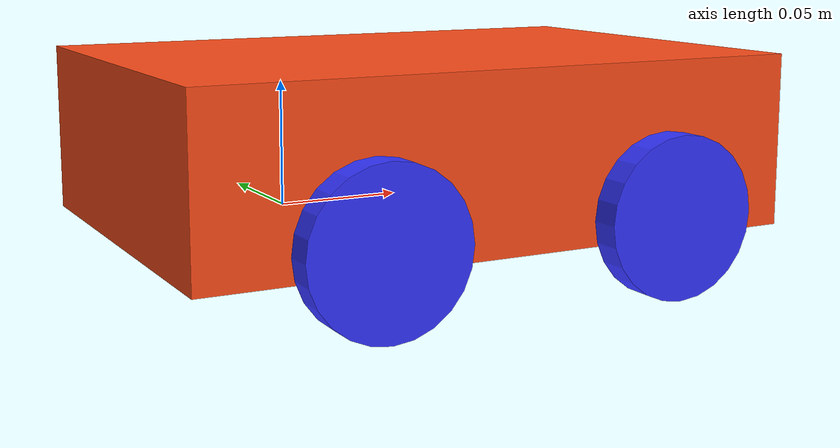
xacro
<?xml version="1.0"?>
<robot xmlns:xacro="http://www.ros.org/wiki/xacro" >

    <xacro:include filename="inertial_macros.xacro"/>

    <xacro:property name="chassis_length" value="0.25"/>
    <xacro:property name="chassis_width" value="0.172"/>
    <xacro:property name="chassis_height" value="0.07"/>
    <xacro:property name="chassis_mass" value="1.7"/>
    <xacro:property name="wheel_radius" value="0.0325"/>
    <xacro:property name="wheel_thickness" value="0.012"/>
    <xacro:property name="wheel_mass" value="0.05"/>
    <xacro:property name="wheel_offset_x" value="0.068"/>
    <xacro:property name="wheel_offset_y" value="0.092"/>
    <xacro:property name="wheel_offset_z" value="0.01"/>
    <xacro:property name="caster_wheel_radius" value="0.01"/>
    <xacro:property name="caster_wheel_mass" value="0.01"/>
    <xacro:property name="caster_wheel_offset_x" value="0.2"/>
    <xacro:property name="caster_wheel_offset_z" value="${wheel_offset_z - wheel_radius + caster_wheel_radius}"/>

    <material name="white">
        <color rgba="1 1 1 1" />
    </material>

    <material name="orange">
        <color rgba="1 0.3 0.1 1"/>
    </material>

    <material name="blue">
        <color rgba="0.2 0.2 1 1"/>
    </material>

    <material name="black">
        <color rgba="0 0 0 1"/>
    </material>

    <material name="red">
        <color rgba="1 0 0 1"/>
    </material>

    <!-- BASE LINK -->

    <link name="base_link">

    </link>

    <!-- BASE_FOOTPRINT LINK -->

    <joint name="base_footprint_joint" type="fixed">
        <parent link="base_link"/>
        <child link="base_footprint"/>
        <origin xyz="0 0 0" rpy="0 0 0"/>
    </joint>

    <link name="base_footprint">
    </link>

    <!-- CHASSIS LINK -->

    <joint name="chassis_joint" type="fixed">
        <parent link="base_link"/>
        <child link="chassis"/>
        <origin xyz="${-wheel_offset_x} 0 ${-wheel_offset_z}"/>
    </joint>

    <link name="chassis">
        <visual>
            <origin xyz="${chassis_length/2} 0 ${chassis_height/2}"/>
            <geometry>
                <box size="${chassis_length} ${chassis_width} ${chassis_height}"/>
            </geometry>
            <material name="orange"/>
        </visual>
        <collision>
            <origin xyz="${chassis_length/2} 0 ${chassis_height/2}"/>
            <geometry>
                <box size="${chassis_length} ${chassis_width} ${chassis_height}"/>
            </geometry>
        </collision>
        <xacro:inertial_box mass="0.5" x="${chassis_length}" y="${chassis_width}" z="${chassis_height}">
            <origin xyz="${chassis_length/2} 0 ${chassis_height/2}" rpy="0 0 0"/>
        </xacro:inertial_box>
    </link>

    <gazebo reference="chassis">
        <material>Gazebo/Orange</material>
    </gazebo>

    <!-- LEFT WHEEL LINK -->

    <joint name="left_rear" type="continuous">
        <parent link="base_link"/>
        <child link="left_wheel_rear"/>
        <origin xyz="0 ${wheel_offset_y} 0" rpy="-${pi/2} 0 0" />
        <axis xyz="0 0 1"/>
    </joint>

    <link name="left_wheel_rear">
        <visual>
            <geometry>
                <cylinder radius="${wheel_radius}" length="${wheel_thickness}"/>
            </geometry>
            <material name="blue"/>
        </visual>
        <collision>
            <geometry>
                <sphere radius="${wheel_radius}"/>
            </geometry>
        </collision>
        <xacro:inertial_cylinder mass="${wheel_mass}" length="${wheel_thickness}" radius="${wheel_radius}">
            <origin xyz="0 0 0" rpy="0 0 0"/>
        </xacro:inertial_cylinder>
    </link>

    <gazebo reference="left_wheel_rear">
        <material>Gazebo/Blue</material>
    </gazebo>

    <joint name="left_front" type="continuous">
        <parent link="base_link"/>
        <child link="left_wheel_front"/>
        <origin xyz="0.125 ${wheel_offset_y} 0" rpy="-${pi/2} 0 0" />
        <axis xyz="0 0 1"/>
    </joint>

    <link name="left_wheel_front">
        <visual>
            <geometry>
                <cylinder radius="${wheel_radius}" length="${wheel_thickness}"/>
            </geometry>
            <material name="blue"/>
        </visual>
        <collision>
            <geometry>
                <sphere radius="${wheel_radius}"/>
            </geometry>
        </collision>
        <xacro:inertial_cylinder mass="${wheel_mass}" length="${wheel_thickness}" radius="${wheel_radius}">
            <origin xyz="0 0 0" rpy="0 0 0"/>
        </xacro:inertial_cylinder>
    </link>

    <gazebo reference="left_wheel_front">
        <material>Gazebo/Blue</material>
    </gazebo>

    <!-- RIGHT WHEEL LINK -->

    <joint name="right_rear" type="continuous">
        <parent link="base_link"/>
        <child link="right_wheel_rear"/>
        <origin xyz="0 ${-wheel_offset_y} 0" rpy="${pi/2} 0 0" />
        <axis xyz="0 0 -1"/>
    </joint>

    <link name="right_wheel_rear">
        <visual>
            <geometry>
                <cylinder radius="${wheel_radius}" length="${wheel_thickness}"/>
            </geometry>
            <material name="blue"/>
        </visual>
        <collision>
            <geometry>
                <sphere radius="${wheel_radius}"/>
            </geometry>
        </collision>
        <xacro:inertial_cylinder mass="${wheel_mass}" length="${wheel_thickness}" radius="${wheel_radius}">
            <origin xyz="0 0 0" rpy="0 0 0"/>
        </xacro:inertial_cylinder>
    </link>

    <gazebo reference="right_wheel_rear">
        <material>Gazebo/Blue</material>
    </gazebo>

    <joint name="right_front" type="continuous">
        <parent link="base_link"/>
        <child link="right_wheel_front"/>
        <origin xyz="0.125 ${-wheel_offset_y} 0" rpy="${pi/2} 0 0" />
        <axis xyz="0 0 -1"/>
    </joint>

    <link name="right_wheel_front">
        <visual>
            <geometry>
                <cylinder radius="${wheel_radius}" length="${wheel_thickness}"/>
            </geometry>
            <material name="blue"/>
        </visual>
        <collision>
            <geometry>
                <sphere radius="${wheel_radius}"/>
            </geometry>
        </collision>
        <xacro:inertial_cylinder mass="${wheel_mass}" length="${wheel_thickness}" radius="${wheel_radius}">
            <origin xyz="0 0 0" rpy="0 0 0"/>
        </xacro:inertial_cylinder>
    </link>

    <gazebo reference="right_wheel_front">
        <material>Gazebo/Blue</material>
    </gazebo>

    <!-- CASTER WHEEL LINK -->

</robot>
